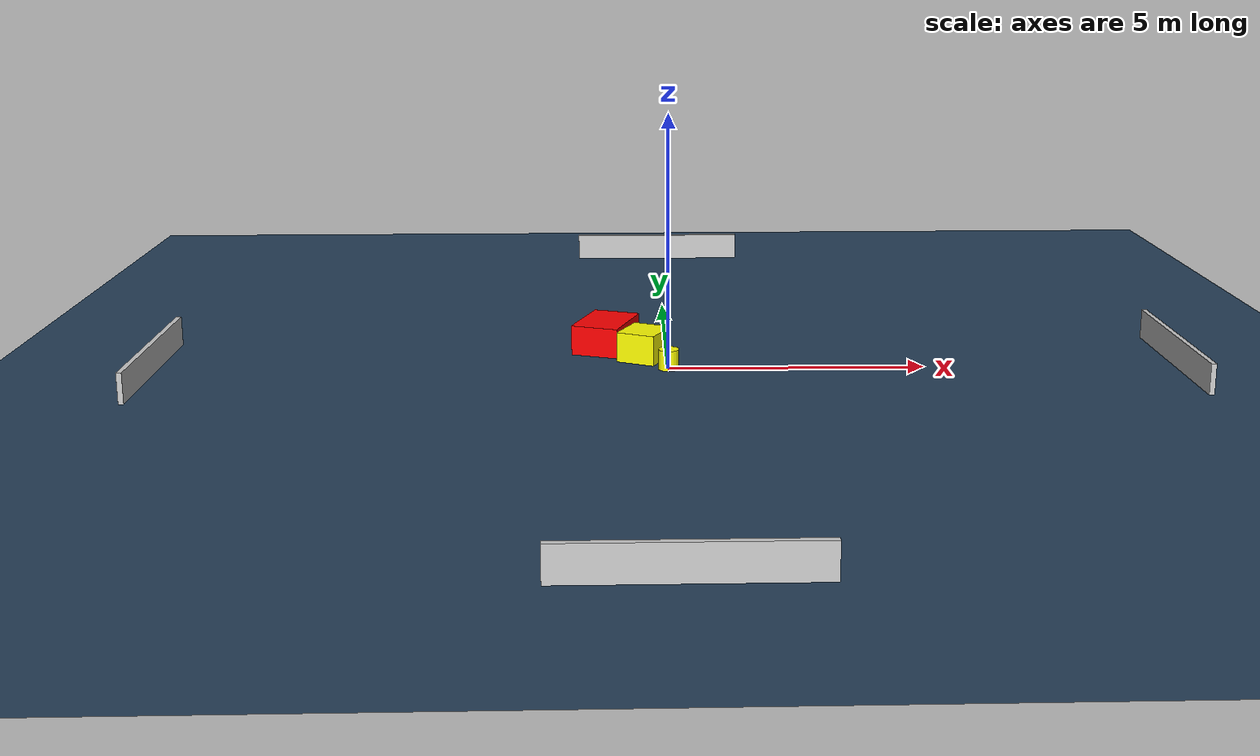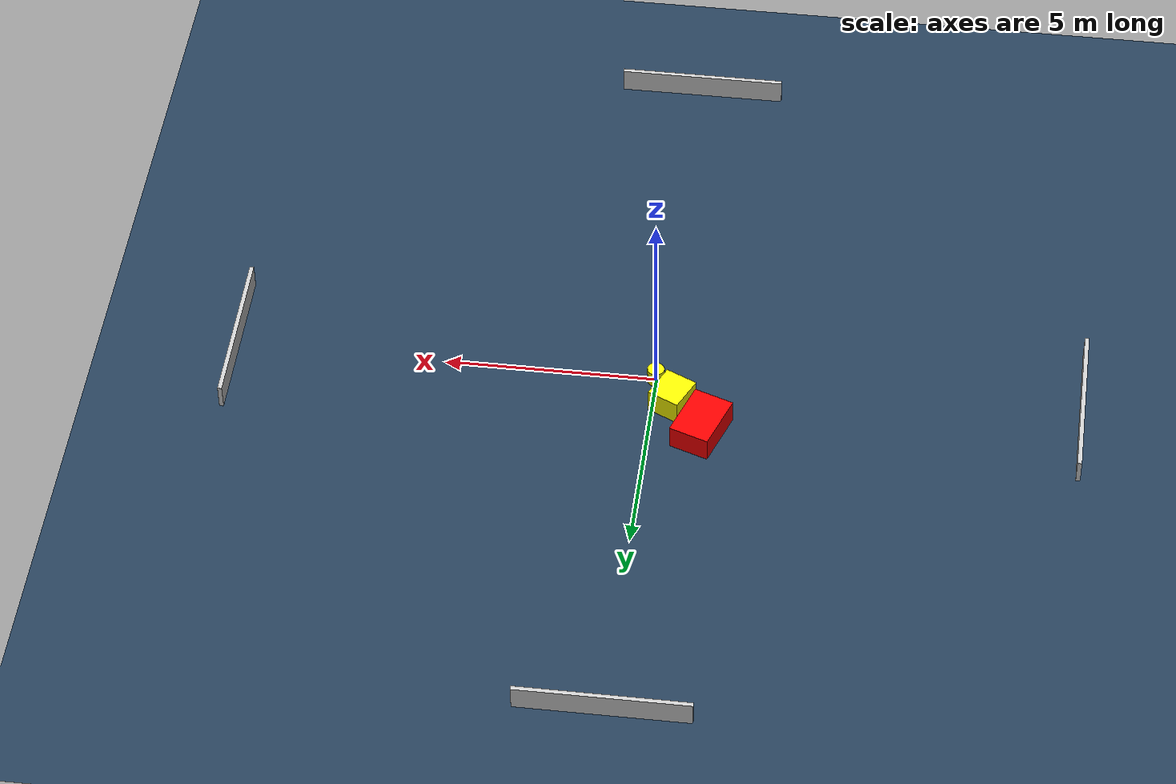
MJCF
<?xml version="1.0" ?>
<mujoco model="generated_environment">
  <option timestep="0.01" integrator="RK4" cone="elliptic"/>
  <default>
    <geom density="1"/>
  </default>
  <asset>
    <texture builtin="gradient" height="3072" name="skybox" rgb1="0.3 0.5 0.7" rgb2="0 0 0" type="skybox" width="512"/>
    <texture builtin="checker" height="300" name="groundplane" rgb1="0.2 0.3 0.4" rgb2="0.1 0.2 0.3" type="2d" width="300"/>
    <material name="groundplane" reflectance="0.2" texrepeat="5 5" texture="groundplane"/>
  </asset>
  <worldbody>
    <light dir="0 0 -1" directional="true" pos="0 0 1.5"/>
    <geom condim="3" friction="0.5 0.005 0.001" material="groundplane" name="floor" pos="0 0 0" size="0 0 0.05" type="plane"/>
    <body name="walls">
      <geom name="wall_1" condim="4" pos="-10.0 0.0 0.3" rgba="0.800000011920929 0.800000011920929 0.800000011920929 1.0" size="0.05 2.0 0.3" type="box"/>
      <geom name="wall_2" condim="4" pos="10.0 0.0 0.3" rgba="0.800000011920929 0.800000011920929 0.800000011920929 1.0" size="0.05 2.0 0.3" type="box"/>
      <geom name="wall_3" condim="4" pos="0.0 -10.0 0.3" rgba="0.800000011920929 0.800000011920929 0.800000011920929 1.0" size="2.0 0.05 0.3" type="box"/>
      <geom name="wall_4" condim="4" pos="0.0 10.0 0.3" rgba="0.800000011920929 0.800000011920929 0.800000011920929 1.0" size="2.0 0.05 0.3" type="box"/>
    </body>
    <body name="robot">
      <joint name="joint_x" type="slide" pos="0 0 0" axis="1 0 0"/>
      <joint name="joint_y" type="slide" pos="0 0 0" axis="0 1 0"/>
      <geom name="robot" type="cylinder" pos="0.0 0.0 0.2" size="0.2 0.2 0.0" mass="5.0" friction="1.0 0.005 0.0001" condim="4" rgba="1.0 1.0 0.0 1.0"/>
    </body>
    <body name="obstacle_1_movable">
      <geom name="obstacle_1_movable" condim="4" pos="-0.4686281046009335 0.7311055266111571 0.3" euler="0 0 64.71932554485504" friction="0.0 0.005 0.001" rgba="1.0 1.0 0.0 1.0" size="0.425472466173364 0.39618317621451105 0.3" type="box" mass="0.1"/>
      <joint type="free"/>
    </body>
    <body name="obstacle_2_static">
      <geom name="obstacle_2_static" condim="4" pos="-1.2370880286568497 1.5318309083680954 0.3" euler="0 0 250.3863510303593" friction="0.0 0.005 0.001" rgba="1.0 0.0 0.0 1.0" size="0.6848486174401943 0.4847264880724938 0.3" type="box"/>
    </body>
  </worldbody>
  <actuator>
    <motor name="actuator_x" joint="joint_x" gear="1" ctrlrange="-1 1"/>
    <motor name="actuator_y" joint="joint_y" gear="1" ctrlrange="-1 1"/>
  </actuator>
</mujoco>
